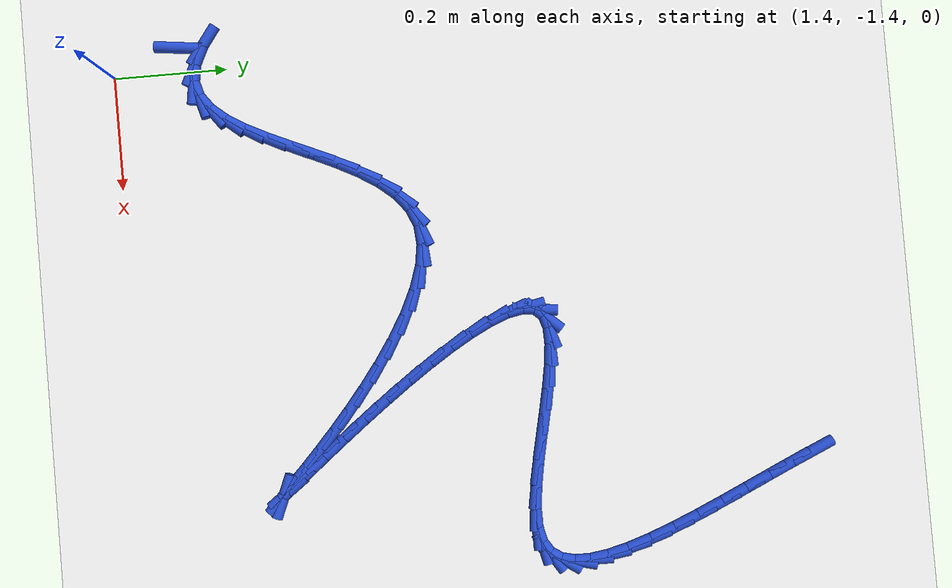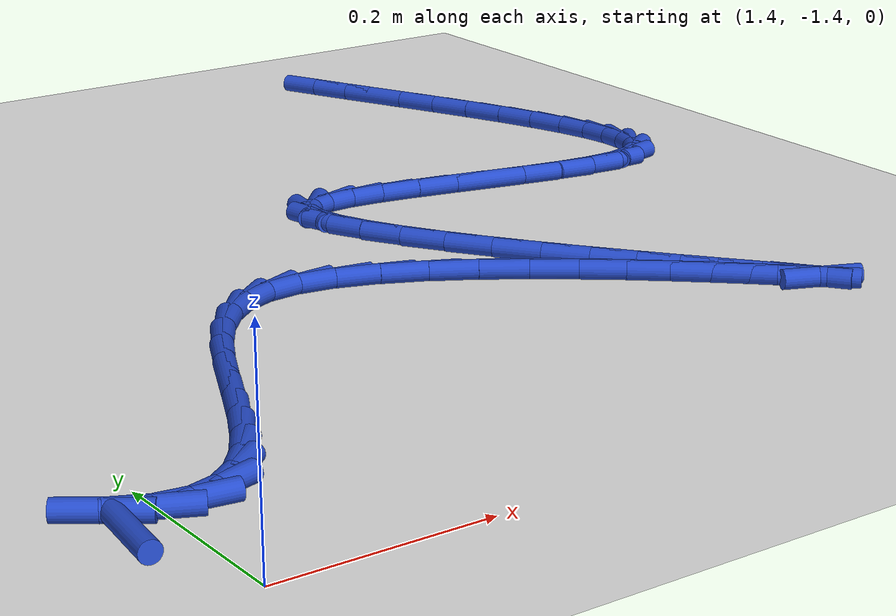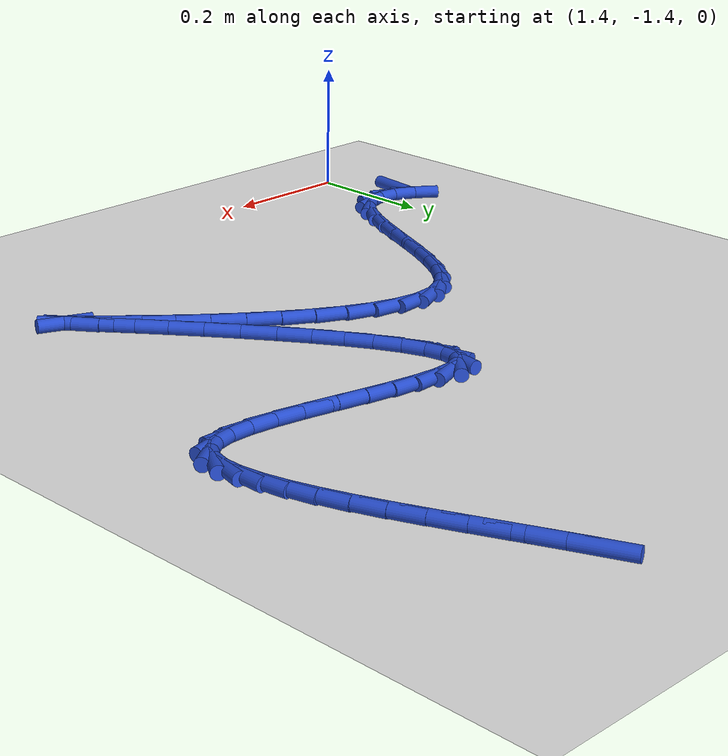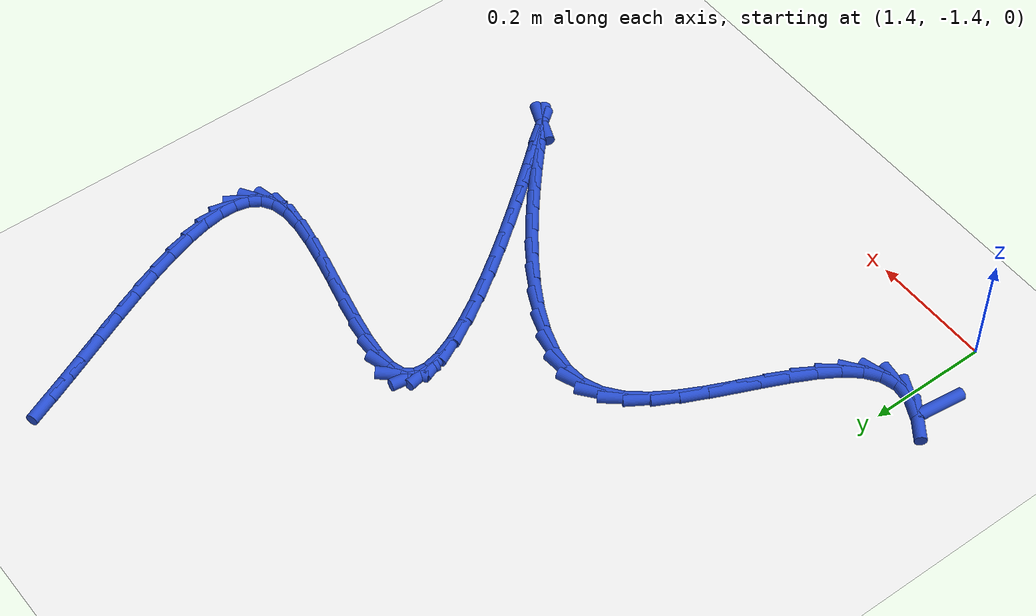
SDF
<sdf version="1.6">
 <world name="default">
  <model name="ground_plane">
   <static>1</static>
   <link name="link">
    <collision name="collision">
     <geometry><plane><normal>0 0 1</normal><size>100 100</size></plane></geometry>
     <surface><friction><ode><mu>100</mu><mu2>50</mu2></ode></friction></surface>
    </collision>
    <visual name="visual">
     <cast_shadows>0</cast_shadows>
     <geometry><plane><normal>0 0 1</normal><size>100 100</size></plane></geometry>
     <material>
      <script><uri>file://media/materials/scripts/gazebo.material</uri><name>Gazebo/WhiteGlow</name></script>
     </material>
    </visual>
   </link>
  </model>
  <model name="line">
   <link name="link_139">
    <pose>2.157526637349521 -0.22951796324121637 0.01 0 1.57 -1.1558745853491006</pose>
    <collision name="collision">
     <geometry><cylinder><radius>0.01</radius><length>0.08</length></cylinder></geometry>
    </collision>
    <visual name="visual">
     <material>
      <script><name>Gazebo/Blue</name><uri>file://media/materials/scripts/gazebo.material</uri></script>
     </material>
     <geometry><cylinder><radius>0.01</radius><length>0.08</length></cylinder></geometry>
    </visual>
   </link>
   <link name="link_140">
    <pose>2.175906165489741 -0.27124265170340045 0.01 0 1.57 -1.144249539127556</pose>
    <collision name="collision">
     <geometry><cylinder><radius>0.01</radius><length>0.08</length></cylinder></geometry>
    </collision>
    <visual name="visual">
     <material>
      <script><name>Gazebo/Blue</name><uri>file://media/materials/scripts/gazebo.material</uri></script>
     </material>
     <geometry><cylinder><radius>0.01</radius><length>0.08</length></cylinder></geometry>
    </visual>
   </link>
   <link name="link_141">
    <pose>2.195436053583006 -0.31421761196781345 0.01 0 1.57 -1.1408463977641883</pose>
    <collision name="collision">
     <geometry><cylinder><radius>0.01</radius><length>0.08</length></cylinder></geometry>
    </collision>
    <visual name="visual">
     <material>
      <script><name>Gazebo/Blue</name><uri>file://media/materials/scripts/gazebo.material</uri></script>
     </material>
     <geometry><cylinder><radius>0.01</radius><length>0.08</length></cylinder></geometry>
    </visual>
   </link>
   <link name="link_142">
    <pose>2.215447002142345 -0.35785624187434606 0.01 0 1.57 -1.1450803757979777</pose>
    <collision name="collision">
     <geometry><cylinder><radius>0.01</radius><length>0.08</length></cylinder></geometry>
    </collision>
    <visual name="visual">
     <material>
      <script><name>Gazebo/Blue</name><uri>file://media/materials/scripts/gazebo.material</uri></script>
     </material>
     <geometry><cylinder><radius>0.01</radius><length>0.08</length></cylinder></geometry>
    </visual>
   </link>
   <link name="link_143">
    <pose>2.2352697116807914 -0.40157193926289 0.01 0 1.57 -1.1571728626834608</pose>
    <collision name="collision">
     <geometry><cylinder><radius>0.01</radius><length>0.08</length></cylinder></geometry>
    </collision>
    <visual name="visual">
     <material>
      <script><name>Gazebo/Blue</name><uri>file://media/materials/scripts/gazebo.material</uri></script>
     </material>
     <geometry><cylinder><radius>0.01</radius><length>0.08</length></cylinder></geometry>
    </visual>
   </link>
   <link name="link_144">
    <pose>2.2542348827113736 -0.4447781019733363 0.01 0 1.57 -1.1781825991924688</pose>
    <collision name="collision">
     <geometry><cylinder><radius>0.01</radius><length>0.08</length></cylinder></geometry>
    </collision>
    <visual name="visual">
     <material>
      <script><name>Gazebo/Blue</name><uri>file://media/materials/scripts/gazebo.material</uri></script>
     </material>
     <geometry><cylinder><radius>0.01</radius><length>0.08</length></cylinder></geometry>
    </visual>
   </link>
   <link name="link_145">
    <pose>2.2716732157471236 -0.48688812784557667 0.01 0 1.57 -1.210249380723732</pose>
    <collision name="collision">
     <geometry><cylinder><radius>0.01</radius><length>0.08</length></cylinder></geometry>
    </collision>
    <visual name="visual">
     <material>
      <script><name>Gazebo/Blue</name><uri>file://media/materials/scripts/gazebo.material</uri></script>
     </material>
     <geometry><cylinder><radius>0.01</radius><length>0.08</length></cylinder></geometry>
    </visual>
   </link>
   <link name="link_146">
    <pose>2.286915411301072 -0.5273154147195025 0.01 0 1.57 -1.2571470152178572</pose>
    <collision name="collision">
     <geometry><cylinder><radius>0.01</radius><length>0.08</length></cylinder></geometry>
    </collision>
    <visual name="visual">
     <material>
      <script><name>Gazebo/Blue</name><uri>file://media/materials/scripts/gazebo.material</uri></script>
     </material>
     <geometry><cylinder><radius>0.01</radius><length>0.08</length></cylinder></geometry>
    </visual>
   </link>
   <link name="link_147">
    <pose>2.299292169886249 -0.5654733604350052 0.01 0 1.57 -1.3253772364602168</pose>
    <collision name="collision">
     <geometry><cylinder><radius>0.01</radius><length>0.08</length></cylinder></geometry>
    </collision>
    <visual name="visual">
     <material>
      <script><name>Gazebo/Blue</name><uri>file://media/materials/scripts/gazebo.material</uri></script>
     </material>
     <geometry><cylinder><radius>0.01</radius><length>0.08</length></cylinder></geometry>
    </visual>
   </link>
   <link name="link_148">
    <pose>2.3081341920156855 -0.6007753628319763 0.01 0 1.57 -1.4262353854922425</pose>
    <collision name="collision">
     <geometry><cylinder><radius>0.01</radius><length>0.08</length></cylinder></geometry>
    </collision>
    <visual name="visual">
     <material>
      <script><name>Gazebo/Blue</name><uri>file://media/materials/scripts/gazebo.material</uri></script>
     </material>
     <geometry><cylinder><radius>0.01</radius><length>0.08</length></cylinder></geometry>
    </visual>
   </link>
   <link name="link_149">
    <pose>2.3127721782024127 -0.6326348197503072 0.01 0 1.57 1.5623399481541733</pose>
    <collision name="collision">
     <geometry><cylinder><radius>0.01</radius><length>0.08</length></cylinder></geometry>
    </collision>
    <visual name="visual">
     <material>
      <script><name>Gazebo/Blue</name><uri>file://media/materials/scripts/gazebo.material</uri></script>
     </material>
     <geometry><cylinder><radius>0.01</radius><length>0.08</length></cylinder></geometry>
    </visual>
   </link>
   <link name="link_150">
    <pose>2.312536828959461 -0.6604651290298892 0.01 0 1.57 1.3268580806987191</pose>
    <collision name="collision">
     <geometry><cylinder><radius>0.01</radius><length>0.08</length></cylinder></geometry>
    </collision>
    <visual name="visual">
     <material>
      <script><name>Gazebo/Blue</name><uri>file://media/materials/scripts/gazebo.material</uri></script>
     </material>
     <geometry><cylinder><radius>0.01</radius><length>0.08</length></cylinder></geometry>
    </visual>
   </link>
   <link name="link_151">
    <pose>2.3067588447998615 -0.683679688510614 0.01 0 1.57 0.983494336235143</pose>
    <collision name="collision">
     <geometry><cylinder><radius>0.01</radius><length>0.08</length></cylinder></geometry>
    </collision>
    <visual name="visual">
     <material>
      <script><name>Gazebo/Blue</name><uri>file://media/materials/scripts/gazebo.material</uri></script>
     </material>
     <geometry><cylinder><radius>0.01</radius><length>0.08</length></cylinder></geometry>
    </visual>
   </link>
   <link name="link_152">
    <pose>2.2947689262366446 -0.7016918960323726 0.01 0 1.57 0.5747718782923047</pose>
    <collision name="collision">
     <geometry><cylinder><radius>0.01</radius><length>0.08</length></cylinder></geometry>
    </collision>
    <visual name="visual">
     <material>
      <script><name>Gazebo/Blue</name><uri>file://media/materials/scripts/gazebo.material</uri></script>
     </material>
     <geometry><cylinder><radius>0.01</radius><length>0.08</length></cylinder></geometry>
    </visual>
   </link>
   <link name="link_153">
    <pose>2.275897773782841 -0.7139151494350573 0.01 0 1.57 0.22239115154661665</pose>
    <collision name="collision">
     <geometry><cylinder><radius>0.01</radius><length>0.08</length></cylinder></geometry>
    </collision>
    <visual name="visual">
     <material>
      <script><name>Gazebo/Blue</name><uri>file://media/materials/scripts/gazebo.material</uri></script>
     </material>
     <geometry><cylinder><radius>0.01</radius><length>0.08</length></cylinder></geometry>
    </visual>
   </link>
   <link name="link_154">
    <pose>2.249596797444239 -0.7198626284596141 0.01 0 1.57 0.008313429010623034</pose>
    <collision name="collision">
     <geometry><cylinder><radius>0.01</radius><length>0.08</length></cylinder></geometry>
    </collision>
    <visual name="visual">
     <material>
      <script><name>Gazebo/Blue</name><uri>file://media/materials/scripts/gazebo.material</uri></script>
     </material>
     <geometry><cylinder><radius>0.01</radius><length>0.08</length></cylinder></geometry>
    </visual>
   </link>
   <link name="link_155">
    <pose>2.2166349854063334 -0.720136660457149 0.01 0 1.57 -0.10805169883571478</pose>
    <collision name="collision">
     <geometry><cylinder><radius>0.01</radius><length>0.08</length></cylinder></geometry>
    </collision>
    <visual name="visual">
     <material>
      <script><name>Gazebo/Blue</name><uri>file://media/materials/scripts/gazebo.material</uri></script>
     </material>
     <geometry><cylinder><radius>0.01</radius><length>0.08</length></cylinder></geometry>
    </visual>
   </link>
   <link name="link_156">
    <pose>2.178592389535331 -0.7160100210930597 0.01 0 1.57 -0.17270169204456423</pose>
    <collision name="collision">
     <geometry><cylinder><radius>0.01</radius><length>0.08</length></cylinder></geometry>
    </collision>
    <visual name="visual">
     <material>
      <script><name>Gazebo/Blue</name><uri>file://media/materials/scripts/gazebo.material</uri></script>
     </material>
     <geometry><cylinder><radius>0.01</radius><length>0.08</length></cylinder></geometry>
    </visual>
   </link>
   <link name="link_157">
    <pose>2.1370609310483433 -0.7087652975759011 0.01 0 1.57 -0.20611553626551024</pose>
    <collision name="collision">
     <geometry><cylinder><radius>0.01</radius><length>0.08</length></cylinder></geometry>
    </collision>
    <visual name="visual">
     <material>
      <script><name>Gazebo/Blue</name><uri>file://media/materials/scripts/gazebo.material</uri></script>
     </material>
     <geometry><cylinder><radius>0.01</radius><length>0.08</length></cylinder></geometry>
    </visual>
   </link>
   <link name="link_158">
    <pose>2.0936325311624833 -0.6996850771142287 0.01 0 1.57 -0.21680716619164653</pose>
    <collision name="collision">
     <geometry><cylinder><radius>0.01</radius><length>0.08</length></cylinder></geometry>
    </collision>
    <visual name="visual">
     <material>
      <script><name>Gazebo/Blue</name><uri>file://media/materials/scripts/gazebo.material</uri></script>
     </material>
     <geometry><cylinder><radius>0.01</radius><length>0.08</length></cylinder></geometry>
    </visual>
   </link>
   <link name="link_159">
    <pose>2.0498991110948617 -0.6900519469165968 0.01 0 1.57 -0.2067594066322664</pose>
    <collision name="collision">
     <geometry><cylinder><radius>0.01</radius><length>0.08</length></cylinder></geometry>
    </collision>
    <visual name="visual">
     <material>
      <script><name>Gazebo/Blue</name><uri>file://media/materials/scripts/gazebo.material</uri></script>
     </material>
     <geometry><cylinder><radius>0.01</radius><length>0.08</length></cylinder></geometry>
    </visual>
   </link>
   <link name="link_160">
    <pose>2.0074525920625916 -0.681148494191561 0.01 0 1.57 -0.1724324235501693</pose>
    <collision name="collision">
     <geometry><cylinder><radius>0.01</radius><length>0.08</length></cylinder></geometry>
    </collision>
    <visual name="visual">
     <material>
      <script><name>Gazebo/Blue</name><uri>file://media/materials/scripts/gazebo.material</uri></script>
     </material>
     <geometry><cylinder><radius>0.01</radius><length>0.08</length></cylinder></geometry>
    </visual>
   </link>
   <link name="link_161">
    <pose>1.967884895282784 -0.6742573061476759 0.01 0 1.57 -0.10211222245158928</pose>
    <collision name="collision">
     <geometry><cylinder><radius>0.01</radius><length>0.08</length></cylinder></geometry>
    </collision>
    <visual name="visual">
     <material>
      <script><name>Gazebo/Blue</name><uri>file://media/materials/scripts/gazebo.material</uri></script>
     </material>
     <geometry><cylinder><radius>0.01</radius><length>0.08</length></cylinder></geometry>
    </visual>
   </link>
   <link name="link_162">
    <pose>1.9327879419725518 -0.6706609699934967 0.01 0 1.57 0.03377832983095862</pose>
    <collision name="collision">
     <geometry><cylinder><radius>0.01</radius><length>0.08</length></cylinder></geometry>
    </collision>
    <visual name="visual">
     <material>
      <script><name>Gazebo/Blue</name><uri>file://media/materials/scripts/gazebo.material</uri></script>
     </material>
     <geometry><cylinder><radius>0.01</radius><length>0.08</length></cylinder></geometry>
    </visual>
   </link>
   <link name="link_163">
    <pose>1.9037536533490058 -0.6716420729375783 0.01 0 1.57 0.3096870074391573</pose>
    <collision name="collision">
     <geometry><cylinder><radius>0.01</radius><length>0.08</length></cylinder></geometry>
    </collision>
    <visual name="visual">
     <material>
      <script><name>Gazebo/Blue</name><uri>file://media/materials/scripts/gazebo.material</uri></script>
     </material>
     <geometry><cylinder><radius>0.01</radius><length>0.08</length></cylinder></geometry>
    </visual>
   </link>
   <link name="link_164">
    <pose>1.8823739506292592 -0.6784832021884757 0.01 0 1.57 0.8514940596531682</pose>
    <collision name="collision">
     <geometry><cylinder><radius>0.01</radius><length>0.08</length></cylinder></geometry>
    </collision>
    <visual name="visual">
     <material>
      <script><name>Gazebo/Blue</name><uri>file://media/materials/scripts/gazebo.material</uri></script>
     </material>
     <geometry><cylinder><radius>0.01</radius><length>0.08</length></cylinder></geometry>
    </visual>
   </link>
   <link name="link_165">
    <pose>1.8701754936100883 -0.6924110176687784 0.01 0 1.57 1.4363746158621307</pose>
    <collision name="collision">
     <geometry><cylinder><radius>0.01</radius><length>0.08</length></cylinder></geometry>
    </collision>
    <visual name="visual">
     <material>
      <script><name>Gazebo/Blue</name><uri>file://media/materials/scripts/gazebo.material</uri></script>
     </material>
     <geometry><cylinder><radius>0.01</radius><length>0.08</length></cylinder></geometry>
    </visual>
   </link>
   <link name="link_166">
    <pose>1.8673252423435127 -0.7134869531067672 0.01 0 1.57 -1.3754314893165842</pose>
    <collision name="collision">
     <geometry><cylinder><radius>0.01</radius><length>0.08</length></cylinder></geometry>
    </collision>
    <visual name="visual">
     <material>
      <script><name>Gazebo/Blue</name><uri>file://media/materials/scripts/gazebo.material</uri></script>
     </material>
     <geometry><cylinder><radius>0.01</radius><length>0.08</length></cylinder></geometry>
    </visual>
   </link>
   <link name="link_167">
    <pose>1.8727046180431872 -0.7406707699431179 0.01 0 1.57 -1.2022109082429016</pose>
    <collision name="collision">
     <geometry><cylinder><radius>0.01</radius><length>0.08</length></cylinder></geometry>
    </collision>
    <visual name="visual">
     <material>
      <script><name>Gazebo/Blue</name><uri>file://media/materials/scripts/gazebo.material</uri></script>
     </material>
     <geometry><cylinder><radius>0.01</radius><length>0.08</length></cylinder></geometry>
    </visual>
   </link>
   <link name="link_168">
    <pose>1.8851446273111934 -0.7728790256492406 0.01 0 1.57 -1.1014768602809806</pose>
    <collision name="collision">
     <geometry><cylinder><radius>0.01</radius><length>0.08</length></cylinder></geometry>
    </collision>
    <visual name="visual">
     <material>
      <script><name>Gazebo/Blue</name><uri>file://media/materials/scripts/gazebo.material</uri></script>
     </material>
     <geometry><cylinder><radius>0.01</radius><length>0.08</length></cylinder></geometry>
    </visual>
   </link>
   <link name="link_169">
    <pose>1.9034762767496116 -0.8090282776965447 0.01 0 1.57 -1.0369965516602886</pose>
    <collision name="collision">
     <geometry><cylinder><radius>0.01</radius><length>0.08</length></cylinder></geometry>
    </collision>
    <visual name="visual">
     <material>
      <script><name>Gazebo/Blue</name><uri>file://media/materials/scripts/gazebo.material</uri></script>
     </material>
     <geometry><cylinder><radius>0.01</radius><length>0.08</length></cylinder></geometry>
    </visual>
   </link>
   <link name="link_170">
    <pose>1.9265305729605235 -0.8480350835564427 0.01 0 1.57 -0.9926931429095286</pose>
    <collision name="collision">
     <geometry><cylinder><radius>0.01</radius><length>0.08</length></cylinder></geometry>
    </collision>
    <visual name="visual">
     <material>
      <script><name>Gazebo/Blue</name><uri>file://media/materials/scripts/gazebo.material</uri></script>
     </material>
     <geometry><cylinder><radius>0.01</radius><length>0.08</length></cylinder></geometry>
    </visual>
   </link>
   <link name="link_171">
    <pose>1.9531385225460085 -0.8888160007003436 0.01 0 1.57 -0.9606774975977403</pose>
    <collision name="collision">
     <geometry><cylinder><radius>0.01</radius><length>0.08</length></cylinder></geometry>
    </collision>
    <visual name="visual">
     <material>
      <script><name>Gazebo/Blue</name><uri>file://media/materials/scripts/gazebo.material</uri></script>
     </material>
     <geometry><cylinder><radius>0.01</radius><length>0.08</length></cylinder></geometry>
    </visual>
   </link>
   <link name="link_172">
    <pose>1.982131132108149 -0.930287586599658 0.01 0 1.57 -0.936721984689771</pose>
    <collision name="collision">
     <geometry><cylinder><radius>0.01</radius><length>0.08</length></cylinder></geometry>
    </collision>
    <visual name="visual">
     <material>
      <script><name>Gazebo/Blue</name><uri>file://media/materials/scripts/gazebo.material</uri></script>
     </material>
     <geometry><cylinder><radius>0.01</radius><length>0.08</length></cylinder></geometry>
    </visual>
   </link>
   <link name="link_173">
    <pose>2.0123394082490242 -0.9713663987257959 0.01 0 1.57 -0.9184181249696679</pose>
    <collision name="collision">
     <geometry><cylinder><radius>0.01</radius><length>0.08</length></cylinder></geometry>
    </collision>
    <visual name="visual">
     <material>
      <script><name>Gazebo/Blue</name><uri>file://media/materials/scripts/gazebo.material</uri></script>
     </material>
     <geometry><cylinder><radius>0.01</radius><length>0.08</length></cylinder></geometry>
    </visual>
   </link>
   <link name="link_174">
    <pose>2.0425943575707164 -1.0109689945501674 0.01 0 1.57 -0.9043688379370979</pose>
    <collision name="collision">
     <geometry><cylinder><radius>0.01</radius><length>0.08</length></cylinder></geometry>
    </collision>
    <visual name="visual">
     <material>
      <script><name>Gazebo/Blue</name><uri>file://media/materials/scripts/gazebo.material</uri></script>
     </material>
     <geometry><cylinder><radius>0.01</radius><length>0.08</length></cylinder></geometry>
    </visual>
   </link>
   <link name="link_175">
    <pose>2.071726986675305 -1.0480119315441832 0.01 0 1.57 -0.8938421461656745</pose>
    <collision name="collision">
     <geometry><cylinder><radius>0.01</radius><length>0.08</length></cylinder></geometry>
    </collision>
    <visual name="visual">
     <material>
      <script><name>Gazebo/Blue</name><uri>file://media/materials/scripts/gazebo.material</uri></script>
     </material>
     <geometry><cylinder><radius>0.01</radius><length>0.08</length></cylinder></geometry>
    </visual>
   </link>
   <link name="link_176">
    <pose>2.0985683021648716 -1.0814117671792534 0.01 0 1.57 -0.8867185340578414</pose>
    <collision name="collision">
     <geometry><cylinder><radius>0.01</radius><length>0.08</length></cylinder></geometry>
    </collision>
    <visual name="visual">
     <material>
      <script><name>Gazebo/Blue</name><uri>file://media/materials/scripts/gazebo.material</uri></script>
     </material>
     <geometry><cylinder><radius>0.01</radius><length>0.08</length></cylinder></geometry>
    </visual>
   </link>
   <link name="link_177">
    <pose>2.1219493106414964 -1.110085058926788 0.01 0 1.57 -0.8838793641910839</pose>
    <collision name="collision">
     <geometry><cylinder><radius>0.01</radius><length>0.08</length></cylinder></geometry>
    </collision>
    <visual name="visual">
     <material>
      <script><name>Gazebo/Blue</name><uri>file://media/materials/scripts/gazebo.material</uri></script>
     </material>
     <geometry><cylinder><radius>0.01</radius><length>0.08</length></cylinder></geometry>
    </visual>
   </link>
   <link name="link_178">
    <pose>2.14070101870726 -1.1329483642581972 0.01 0 1.57 -0.8893142953426338</pose>
    <collision name="collision">
     <geometry><cylinder><radius>0.01</radius><length>0.08</length></cylinder></geometry>
    </collision>
    <visual name="visual">
     <material>
      <script><name>Gazebo/Blue</name><uri>file://media/materials/scripts/gazebo.material</uri></script>
     </material>
     <geometry><cylinder><radius>0.01</radius><length>0.08</length></cylinder></geometry>
    </visual>
   </link>
   <link name="link_179">
    <pose>2.1536544329642444 -1.1489182406448923 0.01 0 1.57 -0.9279863106622315</pose>
    <collision name="collision">
     <geometry><cylinder><radius>0.01</radius><length>0.08</length></cylinder></geometry>
    </collision>
    <visual name="visual">
     <material>
      <script><name>Gazebo/Blue</name><uri>file://media/materials/scripts/gazebo.material</uri></script>
     </material>
     <geometry><cylinder><radius>0.01</radius><length>0.08</length></cylinder></geometry>
    </visual>
   </link>
   <link name="link_180">
    <pose>2.159640560014529 -1.1569112455582822 0.01 0 1.57 -0.388331274291527</pose>
    <collision name="collision">
     <geometry><cylinder><radius>0.01</radius><length>0.08</length></cylinder></geometry>
    </collision>
    <visual name="visual">
     <material>
      <script><name>Gazebo/Blue</name><uri>file://media/materials/scripts/gazebo.material</uri></script>
     </material>
     <geometry><cylinder><radius>0.01</radius><length>0.08</length></cylinder></geometry>
    </visual>
   </link>
   <link name="link_181">
    <pose>2.1577292018046 -1.1561292982747968 0.01 0 1.57 -0.7505121769490118</pose>
    <collision name="collision">
     <geometry><cylinder><radius>0.01</radius><length>0.08</length></cylinder></geometry>
    </collision>
    <visual name="visual">
     <material>
      <script><name>Gazebo/Blue</name><uri>file://media/materials/scripts/gazebo.material</uri></script>
     </material>
     <geometry><cylinder><radius>0.01</radius><length>0.08</length></cylinder></geometry>
    </visual>
   </link>
   <link name="link_182">
    <pose>2.1482865810473317 -1.1473235483160562 0.01 0 1.57 -0.7660264173821926</pose>
    <collision name="collision">
     <geometry><cylinder><radius>0.01</radius><length>0.08</length></cylinder></geometry>
    </collision>
    <visual name="visual">
     <material>
      <script><name>Gazebo/Blue</name><uri>file://media/materials/scripts/gazebo.material</uri></script>
     </material>
     <geometry><cylinder><radius>0.01</radius><length>0.08</length></cylinder></geometry>
    </visual>
   </link>
   <link name="link_183">
    <pose>2.1321167890289137 -1.1317684006580675 0.01 0 1.57 -0.7607569936600408</pose>
    <collision name="collision">
     <geometry><cylinder><radius>0.01</radius><length>0.08</length></cylinder></geometry>
    </collision>
    <visual name="visual">
     <material>
      <script><name>Gazebo/Blue</name><uri>file://media/materials/scripts/gazebo.material</uri></script>
     </material>
     <geometry><cylinder><radius>0.01</radius><length>0.08</length></cylinder></geometry>
    </visual>
   </link>
   <link name="link_184">
    <pose>2.1100242581523614 -1.1107386679133984 0.01 0 1.57 -0.7476335336611191</pose>
    <collision name="collision">
     <geometry><cylinder><radius>0.01</radius><length>0.08</length></cylinder></geometry>
    </collision>
    <visual name="visual">
     <material>
      <script><name>Gazebo/Blue</name><uri>file://media/materials/scripts/gazebo.material</uri></script>
     </material>
     <geometry><cylinder><radius>0.01</radius><length>0.08</length></cylinder></geometry>
    </visual>
   </link>
   <link name="link_185">
    <pose>2.0828134208206848 -1.0855091626946154 0.01 0 1.57 -0.7289853477316562</pose>
    <collision name="collision">
     <geometry><cylinder><radius>0.01</radius><length>0.08</length></cylinder></geometry>
    </collision>
    <visual name="visual">
     <material>
      <script><name>Gazebo/Blue</name><uri>file://media/materials/scripts/gazebo.material</uri></script>
     </material>
     <geometry><cylinder><radius>0.01</radius><length>0.08</length></cylinder></geometry>
    </visual>
   </link>
   <link name="link_186">
    <pose>2.0512887094368986 -1.057354697614286 0.01 0 1.57 -0.7049178354235592</pose>
    <collision name="collision">
     <geometry><cylinder><radius>0.01</radius><length>0.08</length></cylinder></geometry>
    </collision>
    <visual name="visual">
     <material>
      <script><name>Gazebo/Blue</name><uri>file://media/materials/scripts/gazebo.material</uri></script>
     </material>
     <geometry><cylinder><radius>0.01</radius><length>0.08</length></cylinder></geometry>
    </visual>
   </link>
   <link name="link_187">
    <pose>2.0162545564040175 -1.027550085284978 0.01 0 1.57 -0.6745570009912739</pose>
    <collision name="collision">
     <geometry><cylinder><radius>0.01</radius><length>0.08</length></cylinder></geometry>
    </collision>
    <visual name="visual">
     <material>
      <script><name>Gazebo/Blue</name><uri>file://media/materials/scripts/gazebo.material</uri></script>
     </material>
     <geometry><cylinder><radius>0.01</radius><length>0.08</length></cylinder></geometry>
    </visual>
   </link>
   <link name="link_188">
    <pose>1.9785153941250537 -0.997370138319258 0.01 0 1.57 -0.6362068438584253</pose>
    <collision name="collision">
     <geometry><cylinder><radius>0.01</radius><length>0.08</length></cylinder></geometry>
    </collision>
    <visual name="visual">
     <material>
      <script><name>Gazebo/Blue</name><uri>file://media/materials/scripts/gazebo.material</uri></script>
     </material>
     <geometry><cylinder><radius>0.01</radius><length>0.08</length></cylinder></geometry>
    </visual>
   </link>
   <link name="link_189">
    <pose>1.93887565500302 -0.9680896693296932 0.01 0 1.57 -0.5871340405920306</pose>
    <collision name="collision">
     <geometry><cylinder><radius>0.01</radius><length>0.08</length></cylinder></geometry>
    </collision>
    <visual name="visual">
     <material>
      <script><name>Gazebo/Blue</name><uri>file://media/materials/scripts/gazebo.material</uri></script>
     </material>
     <geometry><cylinder><radius>0.01</radius><length>0.08</length></cylinder></geometry>
    </visual>
   </link>
   <link name="link_190">
    <pose>1.8981397714409305 -0.940983490928851 0.01 0 1.57 -0.5230461999333489</pose>
    <collision name="collision">
     <geometry><cylinder><radius>0.01</radius><length>0.08</length></cylinder></geometry>
    </collision>
    <visual name="visual">
     <material>
      <script><name>Gazebo/Blue</name><uri>file://media/materials/scripts/gazebo.material</uri></script>
     </material>
     <geometry><cylinder><radius>0.01</radius><length>0.08</length></cylinder></geometry>
    </visual>
   </link>
   <link name="link_191">
    <pose>1.8571121758417992 -0.9173264157292991 0.01 0 1.57 -0.4371584145657136</pose>
    <collision name="collision">
     <geometry><cylinder><radius>0.01</radius><length>0.08</length></cylinder></geometry>
    </collision>
    <visual name="visual">
     <material>
      <script><name>Gazebo/Blue</name><uri>file://media/materials/scripts/gazebo.material</uri></script>
     </material>
     <geometry><cylinder><radius>0.01</radius><length>0.08</length></cylinder></geometry>
    </visual>
   </link>
   <link name="link_192">
    <pose>1.816597300608638 -0.898393256343604 0.01 0 1.57 -0.3187287537139042</pose>
    <collision name="collision">
     <geometry><cylinder><radius>0.01</radius><length>0.08</length></cylinder></geometry>
    </collision>
    <visual name="visual">
     <material>
      <script><name>Gazebo/Blue</name><uri>file://media/materials/scripts/gazebo.material</uri></script>
     </material>
     <geometry><cylinder><radius>0.01</radius><length>0.08</length></cylinder></geometry>
    </visual>
   </link>
   <link name="link_193">
    <pose>1.7773995781444616 -0.8854588253843336 0.01 0 1.57 -0.15151271328330645</pose>
    <collision name="collision">
     <geometry><cylinder><radius>0.01</radius><length>0.08</length></cylinder></geometry>
    </collision>
    <visual name="visual">
     <material>
      <script><name>Gazebo/Blue</name><uri>file://media/materials/scripts/gazebo.material</uri></script>
     </material>
     <geometry><cylinder><radius>0.01</radius><length>0.08</length></cylinder></geometry>
    </visual>
   </link>
   <link name="link_194">
    <pose>1.740323440852283 -0.8797979354640546 0.01 0 1.57 0.08435145298706448</pose>
    <collision name="collision">
     <geometry><cylinder><radius>0.01</radius><length>0.08</length></cylinder></geometry>
    </collision>
    <visual name="visual">
     <material>
      <script><name>Gazebo/Blue</name><uri>file://media/materials/scripts/gazebo.material</uri></script>
     </material>
     <geometry><cylinder><radius>0.01</radius><length>0.08</length></cylinder></geometry>
    </visual>
   </link>
   <link name="link_195">
    <pose>1.7061733211351149 -0.8826853991953345 0.01 0 1.57 0.3901685542643245</pose>
    <collision name="collision">
     <geometry><cylinder><radius>0.01</radius><length>0.08</length></cylinder></geometry>
    </collision>
    <visual name="visual">
     <material>
      <script><name>Gazebo/Blue</name><uri>file://media/materials/scripts/gazebo.material</uri></script>
     </material>
     <geometry><cylinder><radius>0.01</radius><length>0.08</length></cylinder></geometry>
    </visual>
   </link>
   <link name="link_196">
    <pose>1.6756754110963625 -0.8952277245672318 0.01 0 1.57 0.6745922443946348</pose>
    <collision name="collision">
     <geometry><cylinder><radius>0.01</radius><length>0.08</length></cylinder></geometry>
    </collision>
    <visual name="visual">
     <material>
      <script><name>Gazebo/Blue</name><uri>file://media/materials/scripts/gazebo.material</uri></script>
     </material>
     <geometry><cylinder><radius>0.01</radius><length>0.08</length></cylinder></geometry>
    </visual>
   </link>
   <link name="link_197">
    <pose>1.6487376870077273 -0.9167713354664694 0.01 0 1.57 0.8776647749463301</pose>
    <collision name="collision">
     <geometry><cylinder><radius>0.01</radius><length>0.08</length></cylinder></geometry>
    </collision>
    <visual name="visual">
     <material>
      <script><name>Gazebo/Blue</name><uri>file://media/materials/scripts/gazebo.material</uri></script>
     </material>
     <geometry><cylinder><radius>0.01</radius><length>0.08</length></cylinder></geometry>
    </visual>
   </link>
   <link name="link_198">
    <pose>1.6247806042976738 -0.9456139377612566 0.01 0 1.57 1.0112233527550911</pose>
    <collision name="collision">
     <geometry><cylinder><radius>0.01</radius><length>0.08</length></cylinder></geometry>
    </collision>
    <visual name="visual">
     <material>
      <script><name>Gazebo/Blue</name><uri>file://media/materials/scripts/gazebo.material</uri></script>
     </material>
     <geometry><cylinder><radius>0.01</radius><length>0.08</length></cylinder></geometry>
    </visual>
   </link>
   <link name="link_199">
    <pose>1.6032181280002695 -0.9800392756735553 0.01 0 1.57 1.0945271854814698</pose>
    <collision name="collision">
     <geometry><cylinder><radius>0.01</radius><length>0.08</length></cylinder></geometry>
    </collision>
    <visual name="visual">
     <material>
      <script><name>Gazebo/Blue</name><uri>file://media/materials/scripts/gazebo.material</uri></script>
     </material>
     <geometry><cylinder><radius>0.01</radius><length>0.08</length></cylinder></geometry>
    </visual>
   </link>
   <link name="link_200">
    <pose>1.583464223149581 -1.0183310934253271 0.01 0 1.57 1.1411273838885245</pose>
    <collision name="collision">
     <geometry><cylinder><radius>0.01</radius><length>0.08</length></cylinder></geometry>
    </collision>
    <visual name="visual">
     <material>
      <script><name>Gazebo/Blue</name><uri>file://media/materials/scripts/gazebo.material</uri></script>
     </material>
     <geometry><cylinder><radius>0.01</radius><length>0.08</length></cylinder></geometry>
    </visual>
   </link>
   <link name="link_201">
    <pose>1.5649328547796768 -1.0587731352385334 0.01 0 1.57 1.158147461336531</pose>
    <collision name="collision">
     <geometry><cylinder><radius>0.01</radius><length>0.08</length></cylinder></geometry>
    </collision>
    <visual name="visual">
     <material>
      <script><name>Gazebo/Blue</name><uri>file://media/materials/scripts/gazebo.material</uri></script>
     </material>
     <geometry><cylinder><radius>0.01</radius><length>0.08</length></cylinder></geometry>
    </visual>
   </link>
   <link name="link_202">
    <pose>1.5470379879246228 -1.0996491453351385 0.01 0 1.57 1.1473707287691763</pose>
    <collision name="collision">
     <geometry><cylinder><radius>0.01</radius><length>0.08</length></cylinder></geometry>
    </collision>
    <visual name="visual">
     <material>
      <script><name>Gazebo/Blue</name><uri>file://media/materials/scripts/gazebo.material</uri></script>
     </material>
     <geometry><cylinder><radius>0.01</radius><length>0.08</length></cylinder></geometry>
    </visual>
   </link>
   <link name="link_203">
    <pose>1.5291935876184866 -1.139242867937103 0.01 0 1.57 1.105349467491776</pose>
    <collision name="collision">
     <geometry><cylinder><radius>0.01</radius><length>0.08</length></cylinder></geometry>
    </collision>
    <visual name="visual">
     <material>
      <script><name>Gazebo/Blue</name><uri>file://media/materials/scripts/gazebo.material</uri></script>
     </material>
     <geometry><cylinder><radius>0.01</radius><length>0.08</length></cylinder></geometry>
    </visual>
   </link>
   <link name="link_204">
    <pose>1.5108136188953356 -1.1758380472663896 0.01 0 1.57 1.0218104321106678</pose>
    <collision name="collision">
     <geometry><cylinder><radius>0.01</radius><length>0.08</length></cylinder></geometry>
    </collision>
    <visual name="visual">
     <material>
      <script><name>Gazebo/Blue</name><uri>file://media/materials/scripts/gazebo.material</uri></script>
     </material>
     <geometry><cylinder><radius>0.01</radius><length>0.08</length></cylinder></geometry>
    </visual>
   </link>
   <link name="link_205">
    <pose>1.4913120467892376 -1.2077184275449593 0.01 0 1.57 0.87602467572818</pose>
    <collision name="collision">
     <geometry><cylinder><radius>0.01</radius><length>0.08</length></cylinder></geometry>
    </collision>
    <visual name="visual">
     <material>
      <script><name>Gazebo/Blue</name><uri>file://media/materials/scripts/gazebo.material</uri></script>
     </material>
     <geometry><cylinder><radius>0.01</radius><length>0.08</length></cylinder></geometry>
    </visual>
   </link>
   <link name="link_206">
    <pose>1.4701028363342596 -1.2331677529947755 0.01 0 1.57 0.634588149158489</pose>
    <collision name="collision">
     <geometry><cylinder><radius>0.01</radius><length>0.08</length></cylinder></geometry>
    </collision>
    <visual name="visual">
     <material>
      <script><name>Gazebo/Blue</name><uri>file://media/materials/scripts/gazebo.material</uri></script>
     </material>
     <geometry><cylinder><radius>0.01</radius><length>0.08</length></cylinder></geometry>
    </visual>
   </link>
   <link name="link_207">
    <pose>1.4465999525644686 -1.2504697678377987 0.01 0 1.57 0.27481168863560174</pose>
    <collision name="collision">
     <geometry><cylinder><radius>0.01</radius><length>0.08</length></cylinder></geometry>
    </collision>
    <visual name="visual">
     <material>
      <script><name>Gazebo/Blue</name><uri>file://media/materials/scripts/gazebo.material</uri></script>
     </material>
     <geometry><cylinder><radius>0.01</radius><length>0.08</length></cylinder></geometry>
    </visual>
   </link>
   <link name="link_208">
    <pose>1.420217360513932 -1.2579082162959923 0.01 0 1.57 -0.13759986904664404</pose>
    <collision name="collision">
     <geometry><cylinder><radius>0.01</radius><length>0.08</length></cylinder></geometry>
    </collision>
    <visual name="visual">
     <material>
      <script><name>Gazebo/Blue</name><uri>file://media/materials/scripts/gazebo.material</uri></script>
     </material>
     <geometry><cylinder><radius>0.01</radius><length>0.08</length></cylinder></geometry>
    </visual>
   </link>
   <link name="link_209">
    <pose>1.3903734377308299 -1.2537755813915192 0.01 0 1.57 -0.44925327020264105</pose>
    <collision name="collision">
     <geometry><cylinder><radius>0.01</radius><length>0.08</length></cylinder></geometry>
    </collision>
    <visual name="visual">
     <material>
      <script><name>Gazebo/Blue</name><uri>file://media/materials/scripts/gazebo.material</uri></script>
     </material>
     <geometry><cylinder><radius>0.01</radius><length>0.08</length></cylinder></geometry>
    </visual>
   </link>
   <link name="link_210">
    <pose>1.3572028326780818 -1.2377828908252704 0.01 0 1.57 -0.6252975395585231</pose>
    <collision name="collision">
     <geometry><cylinder><radius>0.01</radius><length>0.08</length></cylinder></geometry>
    </collision>
    <visual name="visual">
     <material>
      <script><name>Gazebo/Blue</name><uri>file://media/materials/scripts/gazebo.material</uri></script>
     </material>
     <geometry><cylinder><radius>0.01</radius><length>0.08</length></cylinder></geometry>
    </visual>
   </link>
   <link name="link_226">
    <pose>1.3568061976915125 -1.2829788772121398 0.01 0 1.57 1.4528051625477305</pose>
    <collision name="collision">
     <geometry><cylinder><radius>0.01</radius><length>0.08</length></cylinder></geometry>
    </collision>
    <visual name="visual">
     <material>
      <script><name>Gazebo/Blue</name><uri>file://media/materials/scripts/gazebo.material</uri></script>
     </material>
     <geometry><cylinder><radius>0.01</radius><length>0.08</length></cylinder></geometry>
    </visual>
   </link>
  </model>
 </world>
</sdf>
